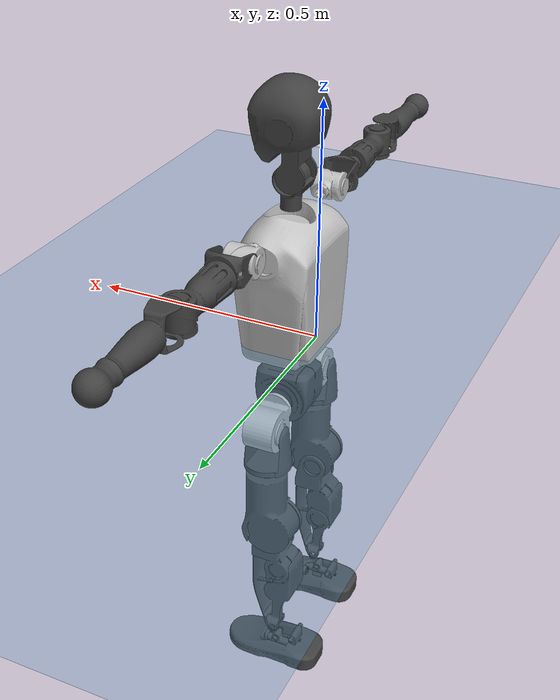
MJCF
<mujoco model="T1">
  <compiler angle="radian" assetdir="assets" balanceinertia="true" inertiafromgeom="false"/>

  <option timestep="0.005" density="1.2" viscosity="2e-05"/>

  <size nkey="1"/>

  <visual>
    <quality shadowsize="8192"/>
    <map shadowclip="0.5"/>
  </visual>

  <default>
    <default class="/">
      <joint armature="0.01" damping="0.01" frictionloss="0.1"/>
      <geom contype="0" conaffinity="0" group="1" solref="-1000 -80"/>
      <site size="0.01 0.005 0.005" group="5"/>
      <general forcelimited="true" biastype="affine" gainprm="25" biasprm="0 -25 -0.6"/>
      <default class="t1">
        <geom rgba="0.25 0.25 0.25 1"/>
        <default class="visual">
          <geom type="mesh" group="2"/>
        </default>
        <default class="collision">
          <geom group="3"/>
        </default>
        <default class="foot">
          <geom size="0.1115 0.05 0.015" type="box" condim="6" group="4" priority="1" solimp="0.015 1 0.015"/>
        </default>
        <default class="reward_collision_sphere">
          <geom group="5" rgba="1 0 0 1"/>
        </default>
      </default>
    </default>
  </default>

  <asset>
    <texture type="skybox" colorspace="auto" name="//unnamed_texture_0" builtin="gradient" rgb1="0.95 0.95 0.95" rgb2="0.95 0.95 0.95" width="100" height="600"/>
    <texture type="2d" colorspace="auto" name="texplane" builtin="checker" rgb1="0.345 0.575 0.748" rgb2="0.345 0.575 0.748" markrgb="1 1 1" width="512" height="512"/>
    <material name="MatPlane" class="/" texture="texplane" texuniform="true" texrepeat="2 2" specular="0.9"/>
    <mesh name="Trunk" class="/" file="Trunk.stl"/>
    <mesh name="H1" class="/" file="H1.stl"/>
    <mesh name="H2" class="/" file="H2.stl"/>
    <mesh name="AL1" class="/" file="AL1.stl"/>
    <mesh name="AL2" class="/" file="AL2.stl"/>
    <mesh name="AL3" class="/" file="AL3.stl"/>
    <mesh name="left_hand_link" class="/" file="left_hand_link.stl"/>
    <mesh name="AR1" class="/" file="AR1.stl"/>
    <mesh name="AR2" class="/" file="AR2.stl"/>
    <mesh name="AR3" class="/" file="AR3.stl"/>
    <mesh name="right_hand_link" class="/" file="right_hand_link.stl"/>
    <mesh name="Waist" class="/" file="Waist.stl"/>
    <mesh name="Hip_Pitch_Left" class="/" file="Hip_Pitch_Left.stl"/>
    <mesh name="Hip_Roll_Left" class="/" file="Hip_Roll_Left.stl"/>
    <mesh name="Hip_Yaw_Left" class="/" file="Hip_Yaw_Left.stl"/>
    <mesh name="Shank_Left" class="/" file="Shank_Left.stl"/>
    <mesh name="Ankle_Cross_Left" class="/" file="Ankle_Cross_Left.stl"/>
    <mesh name="left_foot_link" class="/" file="left_foot_link.stl"/>
    <mesh name="Hip_Pitch_Right" class="/" file="Hip_Pitch_Right.stl"/>
    <mesh name="Hip_Roll_Right" class="/" file="Hip_Roll_Right.stl"/>
    <mesh name="Hip_Yaw_Right" class="/" file="Hip_Yaw_Right.stl"/>
    <mesh name="Shank_Right" class="/" file="Shank_Right.stl"/>
    <mesh name="Ankle_Cross_Right" class="/" file="Ankle_Cross_Right.stl"/>
    <mesh name="right_foot_link" class="/" file="right_foot_link.stl"/>
  </asset>

  <worldbody>
    <geom name="floor" class="/" size="100 100 0.125" type="plane" group="0" material="MatPlane"/>
    <light name="toplight_shadow" class="/" pos="0 0 5" dir="0.0990148 0.0990148 -0.990148" type="directional" ambient="0.04 0.04 0.04" diffuse="0.55 0.55 0.55" specular="0.12 0.12 0.12"/>
    <light name="toplight_fill" class="/" pos="0 0 5" dir="0.0990148 0.0990148 -0.990148" type="directional" castshadow="false" ambient="0.04 0.04 0.04" diffuse="0.3 0.3 0.3" specular="0.08 0.08 0.08"/>
    <body name="trunk" childclass="t1" pos="0.00388421 0.00842443 -0.00527965" quat="0.999996 0.00166125 0.000512715 0.0023143">
      <inertial pos="0.0498374 0.00223726 0.118933" quat="0.99997 -0.00210891 -0.00736719 -0.000707508" mass="18.9727" diaginertia="0.0568989 0.291233 0.118285"/>
      <joint name="//unnamed_joint_0" type="free" armature="0" damping="0" frictionloss="0"/>
      <geom name="//unnamed_geom_1" class="visual" rgba="0.76 0.76 0.76 1" mesh="Trunk"/>
      <geom name="//unnamed_geom_2" class="collision" size="0.086313 0.115084 0.172626" pos="0.0553681 0 0.140586" type="box"/>
      <geom name="//unnamed_geom_3" class="reward_collision_sphere" size="0.132347" pos="0.0553681 0 0.117155"/>
      <geom name="//unnamed_geom_4" class="reward_collision_sphere" size="0.0172626" pos="0.0553681 0.115444 0"/>
      <geom name="//unnamed_geom_5" class="reward_collision_sphere" size="0.0172626" pos="0.0553681 -0.115444 0"/>
      <geom name="//unnamed_geom_6" class="reward_collision_sphere" size="0.0172626" pos="0.0553681 0.145324 0.210878"/>
      <geom name="//unnamed_geom_7" class="reward_collision_sphere" size="0.0172626" pos="0.0553681 -0.145324 0.210878"/>
      <site name="imu" pos="0.0318722 0.0494171 0.00685018" size="0.0115084"/>
      <camera name="track" pos="0 -2.71634 0" quat="0.707107 0.707107 0 0" mode="trackcom"/>
      <camera name="ego_camera" pos="0.112582 0 0.49205" quat="-0.5 -0.5 0.5 0.5"/>
      <body name="H1" pos="0.0545033 -0.000991211 0.282636" quat="0.999997 0.00199423 -0.00124764 -0.00107306">
        <inertial pos="-0.00579513 -0.00157104 0.0613061" quat="0.752394 -0.0185728 0.060703 0.655648" mass="0.657012" diaginertia="0.000157894 0.000925086 0.000349003"/>
        <joint name="AAHead_yaw" pos="0 0 0" axis="-0.0193174 0.0457726 0.998765" range="-1.43866 1.56885" armature="0.00803995" damping="0" frictionloss="0.156478"/>
        <geom name="//unnamed_geom_8" class="visual" mesh="H1"/>
        <body name="H2" pos="-0.00929528 -0.000105857 0.0713163" quat="1 -0.000281895 7.76158e-05 8.08673e-05">
          <inertial pos="0.00695766 0.0127265 0.114122" quat="0.989169 0.102594 -0.0722719 -0.0761284" mass="1.06004" diaginertia="0.00152204 0.0112892 0.0041035"/>
          <joint name="Head_pitch" pos="0 0 0" axis="-0.0406485 -0.999163 -0.00454165" stiffness="0.0196623" range="-1.21611 0.253844" armature="0.0111543" damping="0.00564933" frictionloss="0.13491"/>
          <geom name="//unnamed_geom_9" class="visual" mesh="H2"/>
          <geom name="//unnamed_geom_10" class="collision" size="0.0920672" pos="0.00922802 0 0.12887"/>
          <geom name="//unnamed_geom_11" class="reward_collision_sphere" size="0.103576" pos="0.018456 0 0.117155"/>
        </body>
      </body>
      <body name="AL1" pos="0.0597847 0.149752 0.256313" quat="1 0.00021485 -0.00011214 -0.000877201">
        <inertial pos="-0.000624605 0.0586373 0.0111654" quat="0.459474 0.519537 -0.507368 0.511412" mass="0.679287" diaginertia="0.000753249 0.00496816 0.00054546"/>
        <joint name="Left_Shoulder_Pitch" pos="0 0 0" axis="0.0341075 0.998895 -0.0323262" range="-3.29996 1.29967" armature="0.0126279" damping="0.000135228" frictionloss="0.114776"/>
        <geom name="//unnamed_geom_12" class="visual" rgba="0.76 0.76 0.76 1" mesh="AL1"/>
        <body name="AL2" pos="0.00453552 0.0716944 0.00884824" quat="0.999979 -9.62325e-06 -0.0061595 0.00202347">
          <inertial pos="0.00743407 0.0638798 0.000649113" quat="0.487709 0.511893 -0.488405 0.511436" mass="0.25127" diaginertia="0.000262861 0.00174015 0.000400011"/>
          <joint name="Left_Shoulder_Roll" pos="0 0 0" axis="-0.997985 -0.0591514 0.0229658" stiffness="0.0558773" range="-1.77993 1.78812" armature="0.0139132" damping="0.066962" frictionloss="0.0575253"/>
          <geom name="//unnamed_geom_13" class="visual" mesh="AL2"/>
          <body name="AL3" pos="-0.00641843 0.0701609 -0.000420262" quat="0.999986 0.00227314 0.00467564 0.0012208">
            <inertial pos="0.000478026 0.124899 0.00282352" quat="0.686375 0.727239 0.000607392 -0.00346547" mass="1.39238" diaginertia="0.0093368 0.0556185 0.00167205"/>
            <joint name="Left_Elbow_Pitch" pos="0 0 0" axis="0.00721176 -0.999102 0.0417491" stiffness="0.0423109" range="-2.51933 2.49842" armature="0.00500983" damping="0.0585146" frictionloss="0.0699793"/>
            <geom name="//unnamed_geom_14" class="visual" mesh="AL3"/>
            <geom name="//unnamed_geom_15" class="collision" size="0.0345252 0.086313" pos="0 0.0679085 0" quat="0.707105 0.707108 0 0" type="cylinder"/>
            <geom name="//unnamed_geom_16" class="reward_collision_sphere" size="0.0414302"/>
            <body name="left_hand_link" pos="-0.00457412 0.198906 0.0109099" quat="0.999994 0.0033388 0.000678214 0.00038877">
              <inertial pos="-0.000207184 0.151021 0.00894836" quat="0.707553 0.70666 -0.000400071 -0.000524477" mass="0.463355" diaginertia="0.00513249 0.0376313 0.00046522"/>
              <joint name="Left_Elbow_Yaw" pos="0 0 0" axis="-0.00361439 -0.0300817 0.999541" range="-2.44162 0.0363502" armature="0.0126091" damping="0.019642" frictionloss="0.0817701"/>
              <geom name="//unnamed_geom_17" class="visual" mesh="left_hand_link"/>
              <geom name="//unnamed_geom_18" class="collision" size="0.0345252 0.100698" pos="0 0.176562 0" quat="0.707105 0.707108 0 0" type="cylinder"/>
              <geom name="//unnamed_geom_19" class="reward_collision_sphere" size="0.057542"/>
              <geom name="//unnamed_geom_20" class="reward_collision_sphere" size="0.0402794" pos="0 0.149399 0"/>
              <geom name="//unnamed_geom_21" class="reward_collision_sphere" size="0.0402794" pos="0 0.292007 0"/>
            </body>
          </body>
        </body>
      </body>
      <body name="AR1" pos="0.0539751 -0.147408 0.258825" quat="0.999997 -0.000832645 0.00243921 2.7479e-05">
        <inertial pos="0.0014224 -0.0510694 -0.0103533" quat="0.503994 0.490098 -0.506554 0.499196" mass="0.805826" diaginertia="0.000991641 0.00588522 0.000573502"/>
        <joint name="Right_Shoulder_Pitch" pos="0 0 0" axis="-0.00107851 -0.999998 0.00148891" range="-1.17835 3.31182" armature="0.014848" damping="0" frictionloss="0.108114"/>
        <geom name="//unnamed_geom_22" class="visual" rgba="0.76 0.76 0.76 1" mesh="AR1"/>
        <body name="AR2" pos="-0.000390994 -0.0728601 0.00160085" quat="1 0.000310458 -0.000285177 -0.000737283">
          <inertial pos="0.00594281 -0.0514204 0.0111394" quat="0.525136 0.49284 -0.488573 0.492582" mass="0.222038" diaginertia="0.000283784 0.00176471 0.000423251"/>
          <joint name="Right_Shoulder_Roll" pos="0 0 0" axis="-0.99978 -0.0142775 -0.0153919" range="-1.68907 1.37575" armature="0.0122192" damping="0.0547652" frictionloss="0.119942"/>
          <geom name="//unnamed_geom_23" class="visual" mesh="AR2"/>
          <body name="AR3" pos="-0.00758565 -0.0820061 0.00633433" quat="1 0.000328845 0.000109528 -5.22479e-05">
            <inertial pos="-0.00319179 -0.110501 0.000486336" quat="0.706163 0.708014 -0.00420471 -0.00562898" mass="1.5136" diaginertia="0.00813658 0.0516899 0.00122815"/>
            <joint name="Right_Elbow_Pitch" pos="0 0 0" axis="0.00869835 0.999869 -0.0136769" stiffness="0.0312572" range="-2.29079 2.25073" armature="0.00540901" damping="0.000192784" frictionloss="0.173904"/>
            <geom name="//unnamed_geom_24" class="visual" mesh="AR3"/>
            <geom name="//unnamed_geom_25" class="collision" size="0.0345252 0.086313" pos="0 -0.0679085 0" quat="0.707105 0.707108 0 0" type="cylinder"/>
            <geom name="//unnamed_geom_26" class="reward_collision_sphere" size="0.0414302"/>
            <body name="right_hand_link" pos="0.00037376 -0.198536 0.00144305" quat="0.999996 0.00225185 -0.000565954 -0.00173585">
              <inertial pos="0.00199665 -0.149772 0.0126521" quat="0.745234 0.666726 0.00196591 -0.00994588" mass="0.42326" diaginertia="0.00623302 0.0376176 0.000444631"/>
              <joint name="Right_Elbow_Yaw" pos="0 0 0" axis="0.0168351 0.0225569 0.999604" stiffness="0.0483075" range="0.207711 2.20969" armature="0.0124287" damping="0.0151405" frictionloss="0.102698"/>
              <geom name="//unnamed_geom_27" class="visual" mesh="right_hand_link"/>
              <geom name="//unnamed_geom_28" class="collision" size="0.0345252 0.100698" pos="0 -0.176562 0" quat="0.707105 0.707108 0 0" type="cylinder"/>
              <geom name="//unnamed_geom_29" class="reward_collision_sphere" size="0.057542"/>
              <geom name="//unnamed_geom_30" class="reward_collision_sphere" size="0.0402794" pos="0 -0.149399 0"/>
              <geom name="//unnamed_geom_31" class="reward_collision_sphere" size="0.0402794" pos="0 -0.292007 0"/>
            </body>
          </body>
        </body>
      </body>
      <body name="Waist" pos="0.0527461 -0.00337297 -0.135547" quat="0.999998 0.00125984 0.00118684 0.00034366">
        <inertial pos="0.00221976 0.00139045 0.00350637" quat="0.981147 -0.0216248 -0.191995 -0.0046729" mass="4.2477" diaginertia="0.00397381 0.0242991 0.0102851"/>
        <joint name="Waist" pos="0 0 0" axis="0.031755 0.0366278 0.998824" stiffness="0.0630058" range="-1.55977 1.55006" armature="0.00955029" damping="0" frictionloss="0.167193"/>
        <geom name="//unnamed_geom_32" class="visual" mesh="Waist"/>
        <body name="Hip_Pitch_Left" pos="-0.00730269 0.134108 0.00346582" quat="0.999998 0.00153949 0.000172409 -0.000946459">
          <inertial pos="-0.0105551 -0.0145843 -0.0114689" quat="0.984596 0.17049 0.0344639 0.0177496" mass="1.40519" diaginertia="0.00121177 0.00680448 0.00261109"/>
          <joint name="Left_Hip_Pitch" pos="0 0 0" axis="-0.0223432 0.99975 -0.000670863" range="-1.83723 1.36721" armature="0.0111127" damping="0.0492319" frictionloss="0.118786"/>
          <geom name="//unnamed_geom_33" class="visual" rgba="0.76 0.76 0.76 1" mesh="Hip_Pitch_Left"/>
          <body name="Hip_Roll_Left" pos="-0.00343786 -0.00130565 -0.0333998" quat="0.999999 -0.000550726 0.000925611 0.000424178">
            <inertial pos="0.00777782 -0.00859264 -0.0644123" quat="0.710187 0.0245489 -0.0252805 0.703131" mass="0.659645" diaginertia="0.00115862 0.00897464 0.00131556"/>
            <joint name="Left_Hip_Roll" pos="0 0 0" axis="-0.999798 -0.000216577 -0.0200748" range="-1.6033 0.113572" armature="0.0123444" damping="0.00602835" frictionloss="0.156942"/>
            <geom name="//unnamed_geom_34" class="visual" mesh="Hip_Roll_Left"/>
            <geom name="//unnamed_geom_35" class="reward_collision_sphere" size="0.0632962"/>
            <body name="Hip_Yaw_Left" pos="0.00368285 -0.00788203 -0.103664" quat="0.999999 0.000500256 -0.00123056 0.000443993">
              <inertial pos="-0.00603529 -0.00140007 -0.104602" quat="0.657558 -0.0506088 -0.0340325 0.750931" mass="3.86826" diaginertia="0.0181306 0.123218 0.00631979"/>
              <joint name="Left_Hip_Yaw" pos="0 0 0" axis="-0.00367875 -0.0519228 -0.998644" stiffness="0.00115038" range="-1.10778 1.16574" armature="0.011217" damping="0" frictionloss="0.124129"/>
              <geom name="//unnamed_geom_36" class="visual" mesh="Hip_Yaw_Left"/>
              <geom name="//unnamed_geom_37" class="collision" size="0.057542 0.0920672" type="cylinder"/>
              <body name="Shank_Left" pos="-0.0209073 -0.009844 -0.147551" quat="1 0.000493308 0.000392199 -0.000519157">
                <inertial pos="-0.00658758 0.0119052 -0.146675" quat="0.997568 0.00143699 -0.0239373 0.0654421" mass="2.59351" diaginertia="0.0194181 0.159233 0.00344073"/>
                <joint name="Left_Knee_Pitch" pos="0 0 0" axis="0.0185382 0.999731 0.0139523" range="-0.105375 2.34129" armature="0.00984197" damping="0" frictionloss="0.0405571"/>
                <geom name="//unnamed_geom_38" class="visual" mesh="Shank_Left"/>
                <geom name="//unnamed_geom_39" class="collision" size="0.057542 0.086313" pos="0 0 -0.140586" type="cylinder"/>
                <geom name="//unnamed_geom_40" class="reward_collision_sphere" size="0.0748046"/>
                <body name="Ankle_Cross_Left" pos="-0.00289233 -0.00103567 -0.321555" quat="1 -9.57009e-05 -0.000217161 -0.000722457">
                  <inertial pos="-0.00425615 -0.00066776 -0.0151553" quat="0.444249 0.552636 0.548172 0.443559" mass="0.140165" diaginertia="2.01678e-05 0.000157533 2.89362e-05"/>
                  <joint name="Left_Ankle_Pitch" pos="0 0 0" axis="0.0255236 0.998264 0.0530786" stiffness="0.0555367" range="-0.805708 0.3818" armature="0.0110981" damping="0" frictionloss="0.14192"/>
                  <geom name="//unnamed_geom_41" class="visual" mesh="Ankle_Cross_Left"/>
                  <body name="left_foot_link" pos="-0.00197259 -0.0053287 -0.013826" quat="0.999983 0.00558813 -0.0018073 0.000202113">
                    <inertial pos="-0.0108505 0.00191175 -0.00692532" quat="0.0393216 0.63193 -0.00899187 0.773975" mass="0.975807" diaginertia="0.00173324 0.0104568 0.00500806"/>
                    <joint name="Left_Ankle_Roll" pos="0 0 0" axis="-0.999994 -0.00231623 -0.00261285" range="-0.48683 0.548904" armature="0.0118922" damping="0.0427147" frictionloss="0.0954689"/>
                    <geom name="//unnamed_geom_42" class="visual" mesh="left_foot_link"/>
                    <geom name="left_foot" class="foot" size="0.0908552 0.0651907 0.025559" pos="0.00922802 0 -0.0175732"/>
                    <geom name="//unnamed_geom_44" class="reward_collision_sphere" size="0.0598437" pos="0.00922802 0 -0.0175732"/>
                    <geom name="//unnamed_geom_45" class="reward_collision_sphere" size="0.0345252" pos="0.0876662 -0.0312379 -0.0175732"/>
                    <geom name="//unnamed_geom_46" class="reward_collision_sphere" size="0.0345252" pos="-0.0645962 -0.0312379 -0.0175732"/>
                    <site name="left_foot" class="foot" pos="0.00922802 0 -0.0175732" size="0.0115084"/>
                  </body>
                </body>
              </body>
            </body>
          </body>
        </body>
        <body name="Hip_Pitch_Right" pos="0.00840789 -0.142565 0.00169334" quat="0.999994 -0.000191739 -2.11813e-05 0.0034444">
          <inertial pos="0.0062845 0.0126679 -0.0297673" quat="0.97317 -0.229845 0.00964135 -0.00434357" mass="1.47723" diaginertia="0.00110928 0.00606744 0.00254896"/>
          <joint name="Right_Hip_Pitch" pos="0 0 0" axis="-0.00242305 -0.999992 -0.00303906" range="-1.58108 1.77026" armature="0.0109488" damping="0.039312" frictionloss="0.0723168"/>
          <geom name="//unnamed_geom_47" class="visual" rgba="0.76 0.76 0.76 1" mesh="Hip_Pitch_Right"/>
          <body name="Hip_Roll_Right" pos="-0.00929925 0.00252514 -0.0192019" quat="1 0.000439291 0.000441089 0.000307219">
            <inertial pos="0.0106753 0.00526817 -0.0547431" quat="0.699264 -0.00215234 0.0165916 0.714667" mass="0.508647" diaginertia="0.00115433 0.00692984 0.00116984"/>
            <joint name="Right_Hip_Roll" pos="0 0 0" axis="-0.99991 -0.00545073 0.0122659" range="-0.0821127 1.57997" armature="0.00822913" damping="0" frictionloss="0.144742"/>
            <geom name="//unnamed_geom_48" class="visual" mesh="Hip_Roll_Right"/>
            <geom name="//unnamed_geom_49" class="reward_collision_sphere" size="0.0632962"/>
            <body name="Hip_Yaw_Right" pos="0.00612525 0.00069944 -0.0963804" quat="1 0.000512979 0.00043923 -0.000236162">
              <inertial pos="-0.00738489 0.00953503 -0.115755" quat="0.714586 -0.0275224 -0.034903 0.698134" mass="2.82973" diaginertia="0.0165497 0.091563 0.00555459"/>
              <joint name="Right_Hip_Yaw" pos="0 0 0" axis="0.00167184 -0.0112556 -0.999935" range="-1.01919 1.02098" armature="0.0182219" damping="0.0296299" frictionloss="0.119976"/>
              <geom name="//unnamed_geom_50" class="visual" mesh="Hip_Yaw_Right"/>
              <geom name="//unnamed_geom_51" class="collision" size="0.057542 0.0920672" type="cylinder"/>
              <body name="Shank_Right" pos="-0.0234704 0.0022128 -0.15353" quat="1 -0.000262607 0.000181435 -5.00368e-05">
                <inertial pos="-0.0172052 -0.0130069 -0.146796" quat="0.999572 0.0191338 0.00777369 -0.0207102" mass="2.32511" diaginertia="0.0168687 0.143772 0.00396484"/>
                <joint name="Right_Knee_Pitch" pos="0 0 0" axis="-0.013953 -0.998533 0.0523096" stiffness="0.010355" range="-2.33568 0.0101187" armature="0.0104767" damping="0" frictionloss="0.0881054"/>
                <geom name="//unnamed_geom_52" class="visual" mesh="Shank_Right"/>
                <geom name="//unnamed_geom_53" class="collision" size="0.057542 0.086313" pos="0 0 -0.140586" type="cylinder"/>
                <geom name="//unnamed_geom_54" class="reward_collision_sphere" size="0.0748046"/>
                <body name="Ankle_Cross_Right" pos="-0.00551713 -0.00256904 -0.327252" quat="0.999999 -0.000587497 0.000847493 0.000315676">
                  <inertial pos="-0.00672489 -0.00563858 -0.01084" quat="0.460851 0.53972 0.557554 0.430642" mass="0.122665" diaginertia="1.75915e-05 0.000121233 2.6901e-05"/>
                  <joint name="Right_Ankle_Pitch" pos="0 0 0" axis="0.0634053 -0.997922 -0.0114739" stiffness="0.00395531" range="-0.29002 0.892303" armature="0.0104762" damping="0.00114951" frictionloss="0.100336"/>
                  <geom name="//unnamed_geom_55" class="visual" mesh="Ankle_Cross_Right"/>
                  <body name="right_foot_link" pos="0.00315986 0.00865448 -0.0222404" quat="1 0.000525884 -0.000153504 -0.000366151">
                    <inertial pos="-0.0117517 -0.00160219 -0.0172112" quat="-0.0274308 0.621096 -0.0288014 0.782724" mass="1.05232" diaginertia="0.00152106 0.0108694 0.00511636"/>
                    <joint name="Right_Ankle_Roll" pos="0 0 0" axis="-0.999066 0.0201959 0.0382031" range="-0.443312 0.508716" armature="0.00940855" damping="0" frictionloss="0.176466"/>
                    <geom name="//unnamed_geom_56" class="visual" mesh="right_foot_link"/>
                    <geom name="right_foot" class="foot" size="0.0934796 0.0612799 0.0213264" pos="0.00922802 0 -0.0175732"/>
                    <geom name="//unnamed_geom_58" class="reward_collision_sphere" size="0.0460336"/>
                    <geom name="//unnamed_geom_59" class="reward_collision_sphere" size="0.0345252" pos="0.00922802 0 -0.0175732"/>
                    <geom name="//unnamed_geom_60" class="reward_collision_sphere" size="0.0345252" pos="0.0876662 0.0312379 -0.0175732"/>
                    <geom name="//unnamed_geom_61" class="reward_collision_sphere" size="0.0345252" pos="-0.0645962 0.0312379 -0.0175732"/>
                    <site name="right_foot" class="foot" pos="0.00922802 0 -0.0175732" size="0.0115084"/>
                  </body>
                </body>
              </body>
            </body>
          </body>
        </body>
      </body>
    </body>
  </worldbody>

  <contact>
    <pair class="/" geom1="floor" geom2="left_foot" name="//unnamed_contact_0"/>
    <pair class="/" geom1="floor" geom2="right_foot" name="//unnamed_contact_1"/>
  </contact>

  <actuator>
    <general name="AAHead_yaw" class="/" joint="AAHead_yaw" forcerange="-11.0048 11.0048" gainprm="29.7171" biasprm="0 -29.7171 -0.721516"/>
    <general name="Head_pitch" class="/" joint="Head_pitch" forcerange="-7.04053 7.04053" gainprm="29.7171" biasprm="0 -29.7171 -0.721516"/>
    <general name="Left_Shoulder_Pitch" class="/" joint="Left_Shoulder_Pitch" forcerange="-21.6565 21.6565" gainprm="29.7171" biasprm="0 -29.7171 -0.721516"/>
    <general name="Left_Shoulder_Roll" class="/" joint="Left_Shoulder_Roll" forcerange="-17.4759 17.4759" gainprm="29.7171" biasprm="0 -29.7171 -0.721516"/>
    <general name="Left_Elbow_Pitch" class="/" joint="Left_Elbow_Pitch" forcerange="-14.4097 14.4097" gainprm="29.7171" biasprm="0 -29.7171 -0.721516"/>
    <general name="Left_Elbow_Yaw" class="/" joint="Left_Elbow_Yaw" forcerange="-11.5757 11.5757" gainprm="29.7171" biasprm="0 -29.7171 -0.721516"/>
    <general name="Right_Shoulder_Pitch" class="/" joint="Right_Shoulder_Pitch" forcerange="-21.5193 21.5193" gainprm="29.7171" biasprm="0 -29.7171 -0.721516"/>
    <general name="Right_Shoulder_Roll" class="/" joint="Right_Shoulder_Roll" forcerange="-14.3496 14.3496" gainprm="29.7171" biasprm="0 -29.7171 -0.721516"/>
    <general name="Right_Elbow_Pitch" class="/" joint="Right_Elbow_Pitch" forcerange="-15.9739 15.9739" gainprm="29.7171" biasprm="0 -29.7171 -0.721516"/>
    <general name="Right_Elbow_Yaw" class="/" joint="Right_Elbow_Yaw" forcerange="-26.5822 26.5822" gainprm="29.7171" biasprm="0 -29.7171 -0.721516"/>
    <general name="Waist" class="/" joint="Waist" forcerange="-34.5971 34.5971" gainprm="29.7171" biasprm="0 -29.7171 -0.721516"/>
    <general name="Left_Hip_Pitch" class="/" joint="Left_Hip_Pitch" forcerange="-40.5131 40.5131" gainprm="29.7171" biasprm="0 -29.7171 -0.721516"/>
    <general name="Left_Hip_Roll" class="/" joint="Left_Hip_Roll" forcerange="-34.9135 34.9135" gainprm="29.7171" biasprm="0 -29.7171 -0.721516"/>
    <general name="Left_Hip_Yaw" class="/" joint="Left_Hip_Yaw" forcerange="-31.1334 31.1334" gainprm="29.7171" biasprm="0 -29.7171 -0.721516"/>
    <general name="Left_Knee_Pitch" class="/" joint="Left_Knee_Pitch" forcerange="-69.4608 69.4608" gainprm="29.7171" biasprm="0 -29.7171 -0.721516"/>
    <general name="Left_Ankle_Pitch" class="/" joint="Left_Ankle_Pitch" forcerange="-21.3168 21.3168" gainprm="29.7171" biasprm="0 -29.7171 -0.721516"/>
    <general name="Left_Ankle_Roll" class="/" joint="Left_Ankle_Roll" forcerange="-17.474 17.474" gainprm="29.7171" biasprm="0 -29.7171 -0.721516"/>
    <general name="Right_Hip_Pitch" class="/" joint="Right_Hip_Pitch" forcerange="-49.8592 49.8592" gainprm="29.7171" biasprm="0 -29.7171 -0.721516"/>
    <general name="Right_Hip_Roll" class="/" joint="Right_Hip_Roll" forcerange="-34.9498 34.9498" gainprm="29.7171" biasprm="0 -29.7171 -0.721516"/>
    <general name="Right_Hip_Yaw" class="/" joint="Right_Hip_Yaw" forcerange="-36.818 36.818" gainprm="29.7171" biasprm="0 -29.7171 -0.721516"/>
    <general name="Right_Knee_Pitch" class="/" joint="Right_Knee_Pitch" forcerange="-81.4754 81.4754" gainprm="29.7171" biasprm="0 -29.7171 -0.721516"/>
    <general name="Right_Ankle_Pitch" class="/" joint="Right_Ankle_Pitch" forcerange="-29.9752 29.9752" gainprm="29.7171" biasprm="0 -29.7171 -0.721516"/>
    <general name="Right_Ankle_Roll" class="/" joint="Right_Ankle_Roll" forcerange="-13.3925 13.3925" gainprm="29.7171" biasprm="0 -29.7171 -0.721516"/>
  </actuator>

  <sensor>
    <gyro site="imu" name="imu_angular_velocity"/>
    <velocimeter site="imu" name="imu_linear_velocity"/>
    <framelinvel objtype="site" objname="left_foot" name="left_foot_global_linear_velocity"/>
    <framelinvel objtype="site" objname="right_foot" name="right_foot_global_linear_velocity"/>
  </sensor>

  <keyframe>
    <key name="home" qpos="0 0 0.6385 1 0 0 0 0 0 0 1.4 0 -0.4 0 -1.4 0 0.4 0 -0.4 0 0 0.8 -0.4 0 0.4 0 0 -0.8 0.4 0"/>
  </keyframe>
</mujoco>
